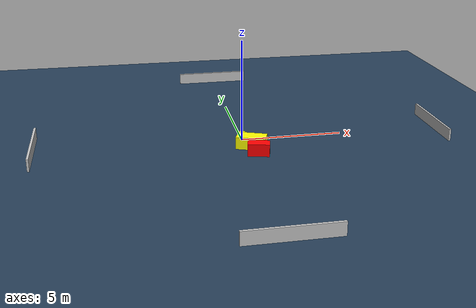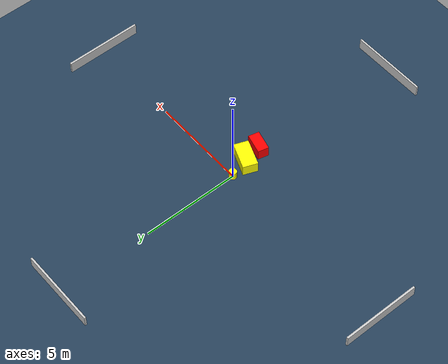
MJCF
<?xml version="1.0" ?>
<mujoco model="generated_environment">
  <option timestep="0.01" integrator="RK4" cone="elliptic"/>
  <default>
    <geom density="1"/>
  </default>
  <asset>
    <texture builtin="gradient" height="3072" name="skybox" rgb1="0.3 0.5 0.7" rgb2="0 0 0" type="skybox" width="512"/>
    <texture builtin="checker" height="300" name="groundplane" rgb1="0.2 0.3 0.4" rgb2="0.1 0.2 0.3" type="2d" width="300"/>
    <material name="groundplane" reflectance="0.2" texrepeat="5 5" texture="groundplane"/>
  </asset>
  <worldbody>
    <light dir="0 0 -1" directional="true" pos="0 0 1.5"/>
    <geom condim="3" friction="0.5 0.005 0.001" material="groundplane" name="floor" pos="0 0 0" size="0 0 0.05" type="plane"/>
    <body name="walls">
      <geom name="wall_1" condim="4" pos="-10.0 0.0 0.3" rgba="0.800000011920929 0.800000011920929 0.800000011920929 1.0" size="0.05 2.0 0.3" type="box"/>
      <geom name="wall_2" condim="4" pos="10.0 0.0 0.3" rgba="0.800000011920929 0.800000011920929 0.800000011920929 1.0" size="0.05 2.0 0.3" type="box"/>
      <geom name="wall_3" condim="4" pos="0.0 -10.0 0.3" rgba="0.800000011920929 0.800000011920929 0.800000011920929 1.0" size="2.0 0.05 0.3" type="box"/>
      <geom name="wall_4" condim="4" pos="0.0 10.0 0.3" rgba="0.800000011920929 0.800000011920929 0.800000011920929 1.0" size="2.0 0.05 0.3" type="box"/>
    </body>
    <body name="robot">
      <joint name="joint_x" type="slide" pos="0 0 0" axis="1 0 0"/>
      <joint name="joint_y" type="slide" pos="0 0 0" axis="0 1 0"/>
      <geom name="robot" type="cylinder" pos="0.0 0.0 0.2" size="0.2 0.2 0.0" mass="5.0" friction="1.0 0.005 0.0001" condim="4" rgba="1.0 1.0 0.0 1.0"/>
    </body>
    <body name="obstacle_1_movable">
      <geom name="obstacle_1_movable" condim="4" pos="0.27653305806603906 -1.0168988528179523 0.3" euler="0 0 248.7058945979507" friction="0.0 0.005 0.001" rgba="1.0 1.0 0.0 1.0" size="0.3813914887444389 0.7063508947063071 0.3" type="box" mass="0.1"/>
      <joint type="free"/>
    </body>
    <body name="obstacle_2_static">
      <geom name="obstacle_2_static" condim="4" pos="0.42990443858406385 -1.9405365937270824 0.3" euler="0 0 76.17319660137927" friction="0.0 0.005 0.001" rgba="1.0 0.0 0.0 1.0" size="0.2826661828272552 0.5179086498109917 0.3" type="box"/>
    </body>
  </worldbody>
  <actuator>
    <motor name="actuator_x" joint="joint_x" gear="1" ctrlrange="-1 1"/>
    <motor name="actuator_y" joint="joint_y" gear="1" ctrlrange="-1 1"/>
  </actuator>
</mujoco>
